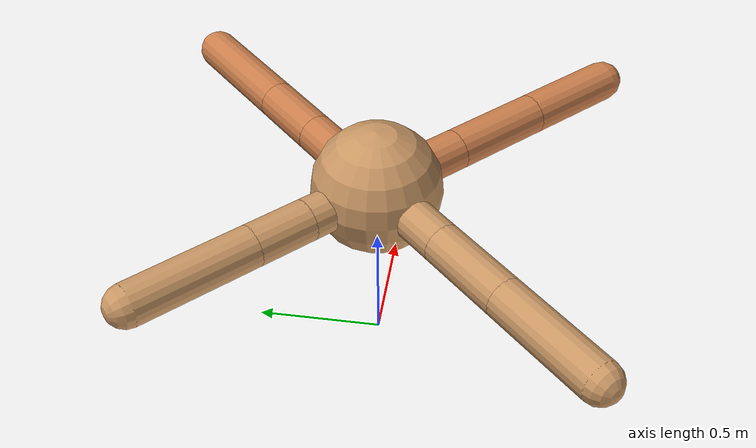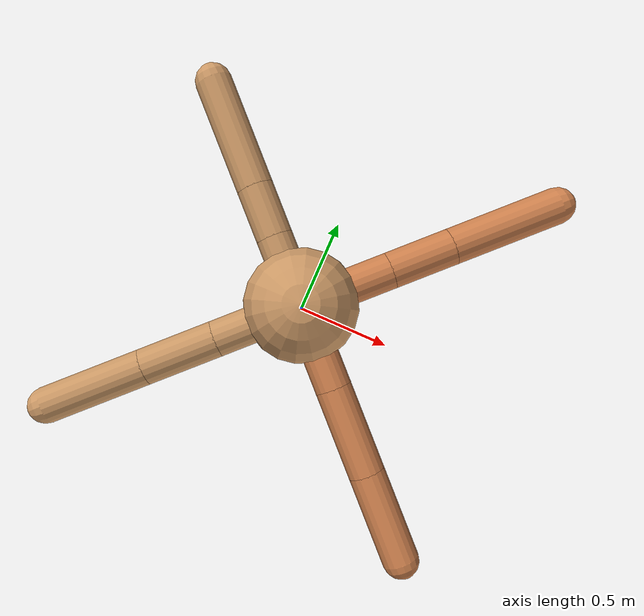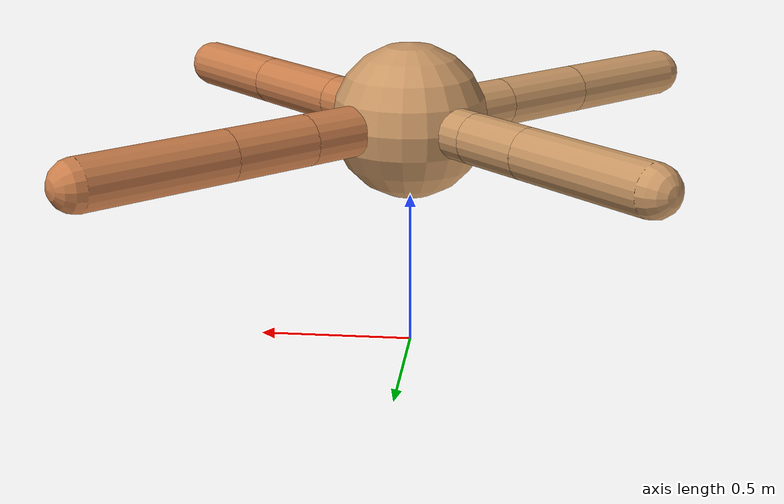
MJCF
<mujoco model="ant">
  <compiler angle="degree" coordinate="local" inertiafromgeom="true" />
  <option integrator="RK4" timestep="0.01" />
  <custom>
    <numeric data="0.0 0.0 0.55 1.0 0.0 0.0 0.0 0.0 1.0 0.0 -1.0 0.0 -1.0 0.0 1.0" name="init_qpos" />
  </custom>
  <default>
    <joint armature="1" damping="1" limited="true" />
    <geom conaffinity="0" condim="3" density="5.0" friction="1.5 0.1 0.1" margin="0.01" rgba="0.8 0.6 0.4 1" />
  </default>
  <worldbody>
    <body name="torso" pos="0 0 0.75">
      <geom name="torso_geom" pos="0 0 0" size="0.25" type="sphere" />

      <body name="front_left_leg" pos="0 0 0">
        <geom fromto="0.0 0.0 0.0 0.28828759246092023 0.28828759246092023 0.0" name="aux_1_geom" size="0.08" type="capsule" rgba=".8 .5 .3 1" />
        <body name="aux_1" pos="0.28828759246092023 0.28828759246092023 0.0">
          <joint axis="0 0 1" name="hip_1" pos="0.0 0.0 0.0" range="-40 40" type="hinge" />
          <geom fromto="0.0 0.0 0.0 0.19826637429976277 0.19826637429976277 0.0" name="left_leg_geom" size="0.08" type="capsule" rgba=".8 .5 .3 1" />
          <body pos="0.19826637429976277 0.19826637429976277 0.0" name="front_left_foot">
            <joint axis="-1 1 0" name="ankle_1" pos="0.0 0.0 0.0" range="30 100" type="hinge" />
            <geom fromto="0.0 0.0 0.0 0.33995659518186994 0.33995659518186994 0.0" name="left_ankle_geom" size="0.08" type="capsule" rgba=".8 .5 .3 1" />
          </body>
        </body>
      </body>
      <body name="front_right_leg" pos="0 0 0">
        <geom fromto="0.0 0.0 0.0 -0.22132345775601625 0.22132345775601625 0.0" name="aux_2_geom" size="0.08" type="capsule" />
        <body name="aux_2" pos="-0.22132345775601625 0.22132345775601625 0.0">
          <joint axis="0 0 1" name="hip_2" pos="0.0 0.0 0.0" range="-40 40" type="hinge" />
          <geom fromto="0.0 0.0 0.0 -0.16083335334512183 0.16083335334512183 0.0" name="right_leg_geom" size="0.08" type="capsule" />
          <body pos="-0.16083335334512183 0.16083335334512183 0.0" name="front_right_foot">
            <joint axis="1 1 0" name="ankle_2" pos="0.0 0.0 0.0" range="-100 -30" type="hinge" />
            <geom fromto="0.0 0.0 0.0 -0.3431346761862997 0.3431346761862997 0.0" name="right_ankle_geom" size="0.08" type="capsule" />
          </body>
        </body>
      </body>
      <body name="left_back_leg" pos="0 0 0">
        <geom fromto="0.0 0.0 0.0 -0.2757804232630993 -0.2757804232630993 0.0" name="aux_3_geom" size="0.08" type="capsule" />
        <body name="aux_3" pos="-0.2757804232630993 -0.2757804232630993 0.0">
          <joint axis="0 0 1" name="hip_3" pos="0.0 0.0 0.0" range="-40 40" type="hinge" />
          <geom fromto="0.0 0.0 0.0 -0.23254536376591847 -0.23254536376591847 0.0" name="back_leg_geom" size="0.08" type="capsule" />
          <body pos="-0.23254536376591847 -0.23254536376591847 0.0" name="left_back_foot">
            <joint axis="-1 1 0" name="ankle_3" pos="0.0 0.0 0.0" range="-100 -30" type="hinge" />
            <geom fromto="0.0 0.0 0.0 -0.3161772800395948 -0.3161772800395948 0.0" name="third_ankle_geom" size="0.08" type="capsule" />
          </body>
        </body>
      </body>
      <body name="right_back_leg" pos="0 0 0">
        <geom fromto="0.0 0.0 0.0 0.26727168982735994 -0.26727168982735994 0.0" name="aux_4_geom" size="0.08" type="capsule" rgba=".8 .5 .3 1" />
        <body name="aux_4" pos="0.26727168982735994 -0.26727168982735994 0.0">
          <joint axis="0 0 1" name="hip_4" pos="0.0 0.0 0.0" range="-40 40" type="hinge" />
          <geom fromto="0.0 0.0 0.0 0.27514923423042736 -0.27514923423042736 0.0" name="rightback_leg_geom" size="0.08" type="capsule" rgba=".8 .5 .3 1" />
          <body pos="0.27514923423042736 -0.27514923423042736 0.0" name="right_back_foot">
            <joint axis="1 1 0" name="ankle_4" pos="0.0 0.0 0.0" range="30 100" type="hinge" />
            <geom fromto="0.0 0.0 0.0 0.2825626848925653 -0.2825626848925653 0.0" name="fourth_ankle_geom" size="0.08" type="capsule" rgba=".8 .5 .3 1" />
          </body>
        </body>
      </body>
    </body>
  </worldbody>
  <actuator>
    <motor ctrllimited="true" ctrlrange="-1.0 1.0" joint="hip_4" gear="150" />
    <motor ctrllimited="true" ctrlrange="-1.0 1.0" joint="ankle_4" gear="150" />
    <motor ctrllimited="true" ctrlrange="-1.0 1.0" joint="hip_1" gear="150" />
    <motor ctrllimited="true" ctrlrange="-1.0 1.0" joint="ankle_1" gear="150" />
    <motor ctrllimited="true" ctrlrange="-1.0 1.0" joint="hip_2" gear="150" />
    <motor ctrllimited="true" ctrlrange="-1.0 1.0" joint="ankle_2" gear="150" />
    <motor ctrllimited="true" ctrlrange="-1.0 1.0" joint="hip_3" gear="150" />
    <motor ctrllimited="true" ctrlrange="-1.0 1.0" joint="ankle_3" gear="150" />
  </actuator>
</mujoco>
